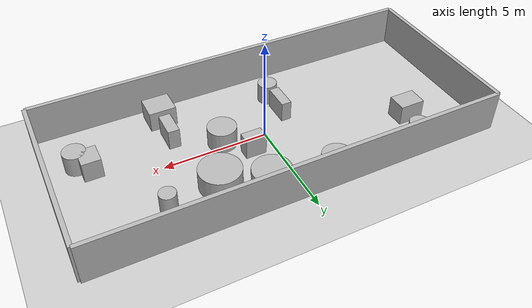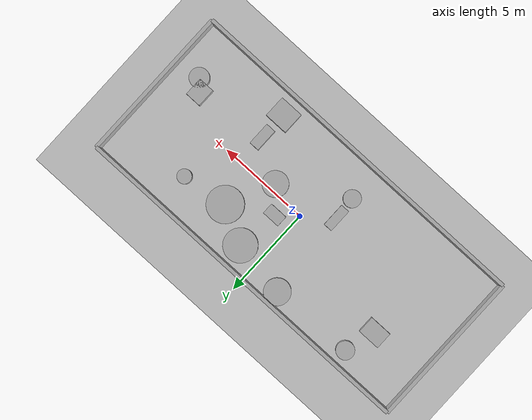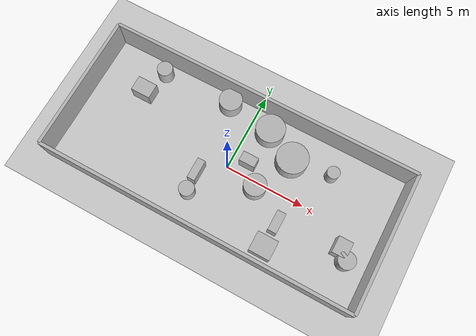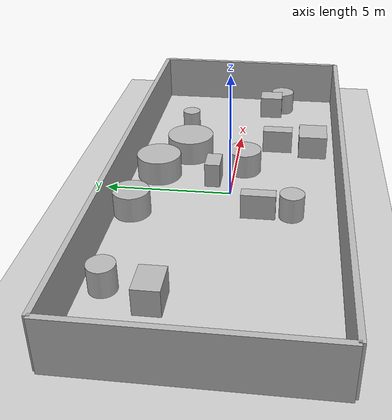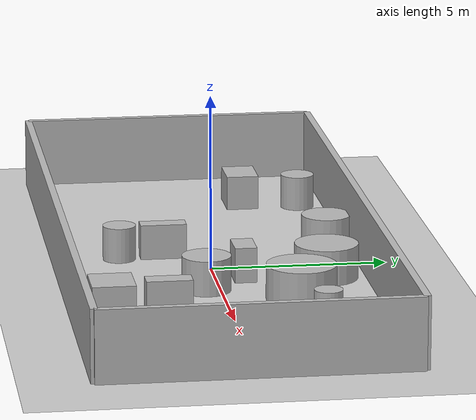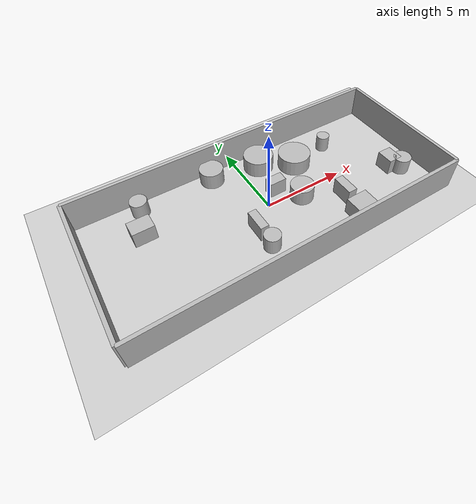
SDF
<?xml version="1.0"?>
<sdf version="1.6">
  <world name="env_42">

    <include><uri>model://ground_plane</uri></include>
    <include><uri>model://sun</uri></include>

    <!-- WALLS -->
    <model name="wall_north"><static>true</static><pose>0 4.292372671248835 1 0 0 0</pose>
      <link name="link"><collision name="collision">
        <geometry><box><size>19.67344096190883 0.2 2</size></box></geometry>
      </collision><visual name="visual">
        <geometry><box><size>19.67344096190883 0.2 2</size></box></geometry>
      </visual></link>
    </model>

    <model name="wall_south"><static>true</static><pose>0 -4.292372671248835 1 0 0 0</pose>
      <link name="link"><collision name="collision">
        <geometry><box><size>19.67344096190883 0.2 2</size></box></geometry>
      </collision><visual name="visual">
        <geometry><box><size>19.67344096190883 0.2 2</size></box></geometry>
      </visual></link>
    </model>

    <model name="wall_east"><static>true</static><pose>9.836720480954416 0 1 0 0 1.57</pose>
      <link name="link"><collision name="collision">
        <geometry><box><size>8.58474534249767 0.2 2</size></box></geometry>
      </collision><visual name="visual">
        <geometry><box><size>8.58474534249767 0.2 2</size></box></geometry>
      </visual></link>
    </model>

    <model name="wall_west"><static>true</static><pose>-9.836720480954416 0 1 0 0 1.57</pose>
      <link name="link"><collision name="collision">
        <geometry><box><size>8.58474534249767 0.2 2</size></box></geometry>
      </collision><visual name="visual">
        <geometry><box><size>8.58474534249767 0.2 2</size></box></geometry>
      </visual></link>
    </model>

    <!-- SENSOR -->

    <model name="lidar_sensor">
      <static>true</static>
      <pose>4.319710320617398 3.207372114195808 0.4 0 0 0</pose>
      <link name="link">
        <sensor name="lidar" type="ray">
          <pose>0 0 0 0 0 0</pose>
          <visualize>true</visualize>
          <always_on>true</always_on>
          <update_rate>10</update_rate>
          <ray>
            <scan><horizontal>
              <samples>720</samples>
              <resolution>1</resolution>
              <min_angle>-3.14159</min_angle>
              <max_angle>3.14159</max_angle>
            </horizontal></scan>
            <range><min>0.15</min><max>20.0</max><resolution>0.01</resolution></range>
          </ray>
          <plugin name="lidar_plugin" filename="liblidar_plugin.so"/>
        </sensor>
      </link>
    </model>

    <!-- OBSTACLES -->

    <model name="obstacle_0">
      <static>true</static>
      <pose>-1.351896043301954 -2.4411542042819554 0.5 0 0 0</pose>
      <link name="link">
        <collision name="collision">
          <geometry><cylinder><radius>0.47</radius><length>1.0</length></cylinder></geometry>
        </collision>
        <visual name="visual">
          <geometry><cylinder><radius>0.47</radius><length>1.0</length></cylinder></geometry>
        </visual>
      </link>
    </model>

    <model name="obstacle_1">
      <static>true</static>
      <pose>-1.7216103430734 3.5650955952664463 0.5 0 0 0</pose>
      <link name="link">
        <collision name="collision">
          <geometry><cylinder><radius>0.71</radius><length>1.0</length></cylinder></geometry>
        </collision>
        <visual name="visual">
          <geometry><cylinder><radius>0.71</radius><length>1.0</length></cylinder></geometry>
        </visual>
      </link>
    </model>

    <model name="obstacle_2">
      <static>true</static>
      <pose>-1.420812996715032 -1.1899303374055368 0.5 0 0 0</pose>
      <link name="link">
        <collision name="collision">
          <geometry><box><size>0.49 1.31 1.0</size></box></geometry>
        </collision>
        <visual name="visual">
          <geometry><box><size>0.49 1.31 1.0</size></box></geometry>
        </visual>
      </link>
    </model>

    <model name="obstacle_3">
      <static>true</static>
      <pose>0.9807225441390415 0.7947346522173806 0.5 0 0 0</pose>
      <link name="link">
        <collision name="collision">
          <geometry><box><size>0.99 0.62 1.0</size></box></geometry>
        </collision>
        <visual name="visual">
          <geometry><box><size>0.99 0.62 1.0</size></box></geometry>
        </visual>
      </link>
    </model>

    <model name="obstacle_4">
      <static>true</static>
      <pose>2.0072287755142817 -0.3835455692730996 0.5 0 0 0</pose>
      <link name="link">
        <collision name="collision">
          <geometry><cylinder><radius>0.69</radius><length>1.0</length></cylinder></geometry>
        </collision>
        <visual name="visual">
          <geometry><cylinder><radius>0.69</radius><length>1.0</length></cylinder></geometry>
        </visual>
      </link>
    </model>

    <model name="obstacle_5">
      <static>true</static>
      <pose>7.930528344618654 -1.2200749892570255 0.5 0 0 0</pose>
      <link name="link">
        <collision name="collision">
          <geometry><box><size>0.88 1.02 1.0</size></box></geometry>
        </collision>
        <visual name="visual">
          <geometry><box><size>0.88 1.02 1.0</size></box></geometry>
        </visual>
      </link>
    </model>

    <model name="obstacle_6">
      <static>true</static>
      <pose>8.44269222572316 -1.750155080666254 0.5 0 0 0</pose>
      <link name="link">
        <collision name="collision">
          <geometry><cylinder><radius>0.53</radius><length>1.0</length></cylinder></geometry>
        </collision>
        <visual name="visual">
          <geometry><cylinder><radius>0.53</radius><length>1.0</length></cylinder></geometry>
        </visual>
      </link>
    </model>

    <model name="obstacle_7">
      <static>true</static>
      <pose>-6.7320246009328875 1.7762842592141714 0.5 0 0 0</pose>
      <link name="link">
        <collision name="collision">
          <geometry><box><size>1.24 0.94 1.0</size></box></geometry>
        </collision>
        <visual name="visual">
          <geometry><box><size>1.24 0.94 1.0</size></box></geometry>
        </visual>
      </link>
    </model>

    <model name="obstacle_8">
      <static>true</static>
      <pose>5.65041677559584 2.424627913068087 0.5 0 0 0</pose>
      <link name="link">
        <collision name="collision">
          <geometry><cylinder><radius>0.39</radius><length>1.0</length></cylinder></geometry>
        </collision>
        <visual name="visual">
          <geometry><cylinder><radius>0.39</radius><length>1.0</length></cylinder></geometry>
        </visual>
      </link>
    </model>

    <model name="obstacle_9">
      <static>true</static>
      <pose>4.076982549428726 -1.6837657647395803 0.5 0 0 0</pose>
      <link name="link">
        <collision name="collision">
          <geometry><box><size>0.55 1.27 1.0</size></box></geometry>
        </collision>
        <visual name="visual">
          <geometry><box><size>0.55 1.27 1.0</size></box></geometry>
        </visual>
      </link>
    </model>

    <model name="obstacle_10">
      <static>true</static>
      <pose>3.1780580715454416 2.083114329725001 0.5 0 0 0</pose>
      <link name="link">
        <collision name="collision">
          <geometry><cylinder><radius>0.98</radius><length>1.0</length></cylinder></geometry>
        </collision>
        <visual name="visual">
          <geometry><cylinder><radius>0.98</radius><length>1.0</length></cylinder></geometry>
        </visual>
      </link>
    </model>

    <model name="obstacle_11">
      <static>true</static>
      <pose>-6.235825012652899 3.434946031758942 0.5 0 0 0</pose>
      <link name="link">
        <collision name="collision">
          <geometry><cylinder><radius>0.49</radius><length>1.0</length></cylinder></geometry>
        </collision>
        <visual name="visual">
          <geometry><cylinder><radius>0.49</radius><length>1.0</length></cylinder></geometry>
        </visual>
      </link>
    </model>

    <model name="obstacle_12">
      <static>true</static>
      <pose>4.031485182658008 -3.226601825963791 0.5 0 0 0</pose>
      <link name="link">
        <collision name="collision">
          <geometry><box><size>1.3 1.2 1.0</size></box></geometry>
        </collision>
        <visual name="visual">
          <geometry><box><size>1.3 1.2 1.0</size></box></geometry>
        </visual>
      </link>
    </model>

    <model name="obstacle_13">
      <static>true</static>
      <pose>1.2278045460426696 3.092594149116069 0.5 0 0 0</pose>
      <link name="link">
        <collision name="collision">
          <geometry><cylinder><radius>0.9</radius><length>1.0</length></cylinder></geometry>
        </collision>
        <visual name="visual">
          <geometry><cylinder><radius>0.9</radius><length>1.0</length></cylinder></geometry>
        </visual>
      </link>
    </model>

  </world>
</sdf>
